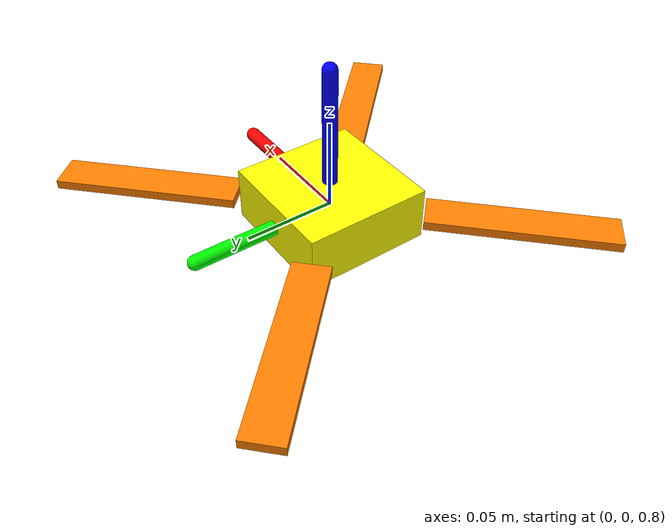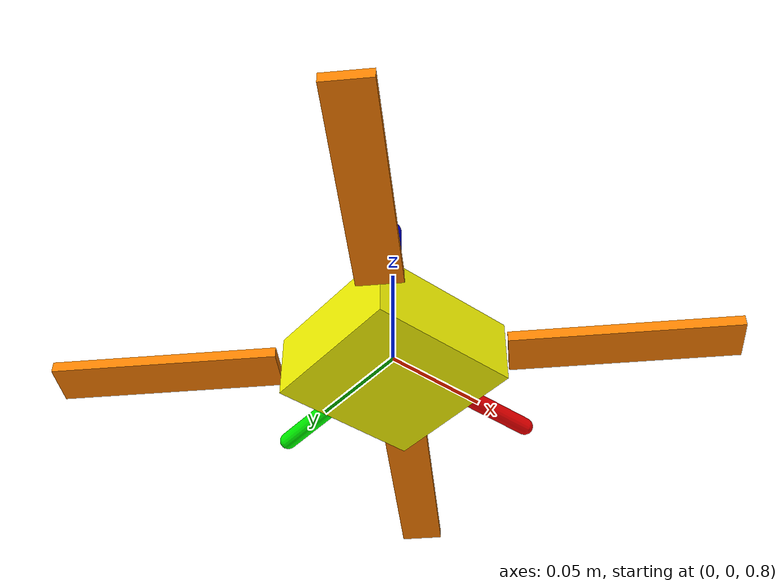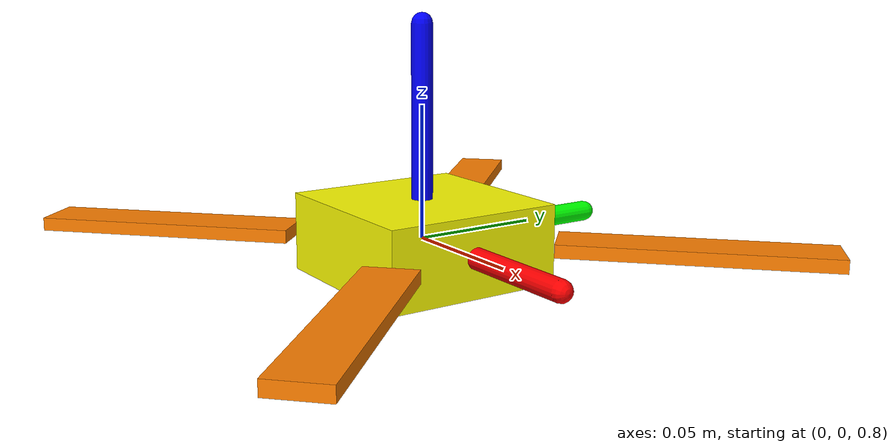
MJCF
<mujoco model="quadrotor">
  <compiler angle="radian" autolimits="true"/>
  <option timestep="0.01" gravity="0 0 -9.81" integrator="implicitfast"/>

  <worldbody>
    <light pos="0 0 3" dir="0 0 -1" directional="true"/>

    <body name="drone_0" pos="0 0 0.8" euler="0 0 0">
      <joint name="drone_0" type="free" damping="0.001"/>

      <geom name="core" type="box" size="0.035 0.035 0.015" rgba="1 1 0 1" mass="0.84"/>
      <geom name="arm_x" type="box" pos="0.071 0.071 0" size="0.05 0.01 0.0025" quat="0.924 0 0 0.383" rgba="1 0.5 0 1" mass="0.025"/>
      <geom name="arm_y" type="box" pos="0.071 -0.071 0" size="0.05 0.01 0.0025" quat="0.383 0 0 0.924" rgba="1 0.5 0 1" mass="0.025"/>
      <geom name="arm_z" type="box" pos="-0.071 -0.071 0" size="0.05 0.01 0.0025" quat="-0.383 0 0 0.924" rgba="1 0.5 0 1" mass="0.025"/>
      <geom name="arm_w" type="box" pos="-0.071 0.071 0" size="0.05 0.01 0.0025" quat="0.924 0 0 -0.383" rgba="1 0.5 0 1" mass="0.025"/>
      <geom name="axis_x" type="capsule" fromto="0 0 0 0.08 0 0" size="0.004" rgba="1 0 0 1" mass="0.001"/>
      <geom name="axis_y" type="capsule" fromto="0 0 0 0 0.08 0" size="0.004" rgba="0 1 0 1" mass="0.001"/>
      <geom name="axis_z" type="capsule" fromto="0 0 0 0 0 0.08" size="0.004" rgba="0 0 1 1" mass="0.001"/>

      <site name="thrust" type="sphere" pos="0 0 0" size="0.01" rgba="0 1 1 1"/>
      <site name="rateX" type="sphere" pos="0 0 0" size="0.01" rgba="0 1 1 1"/>
      <site name="rateY" type="sphere" pos="0 0 0" size="0.01" rgba="0 1 1 1"/>
      <site name="rateZ" type="sphere" pos="0 0 0" size="0.01" rgba="0 1 1 1"/>
      <camera name="drone_0_camera" pos="0.035 0 -0.05" euler="0 -1.2 -1.57"/>
      <site name="imu" pos="0 0 0"/>
    </body>
  </worldbody>

  <actuator>
    <motor name="body_thrust" site="thrust" gear="0 0 1 0 0 0" ctrlrange="0 60"/>
    <motor name="x_moment" site="rateX" gear="0 0 0 1 0 0" ctrlrange="-0.3 0.3"/>
    <motor name="y_moment" site="rateY" gear="0 0 0 0 1 0" ctrlrange="-0.3 0.3"/>
    <motor name="z_moment" site="rateZ" gear="0 0 0 0 0 1" ctrlrange="-0.3 0.3"/>
  </actuator>
</mujoco>
